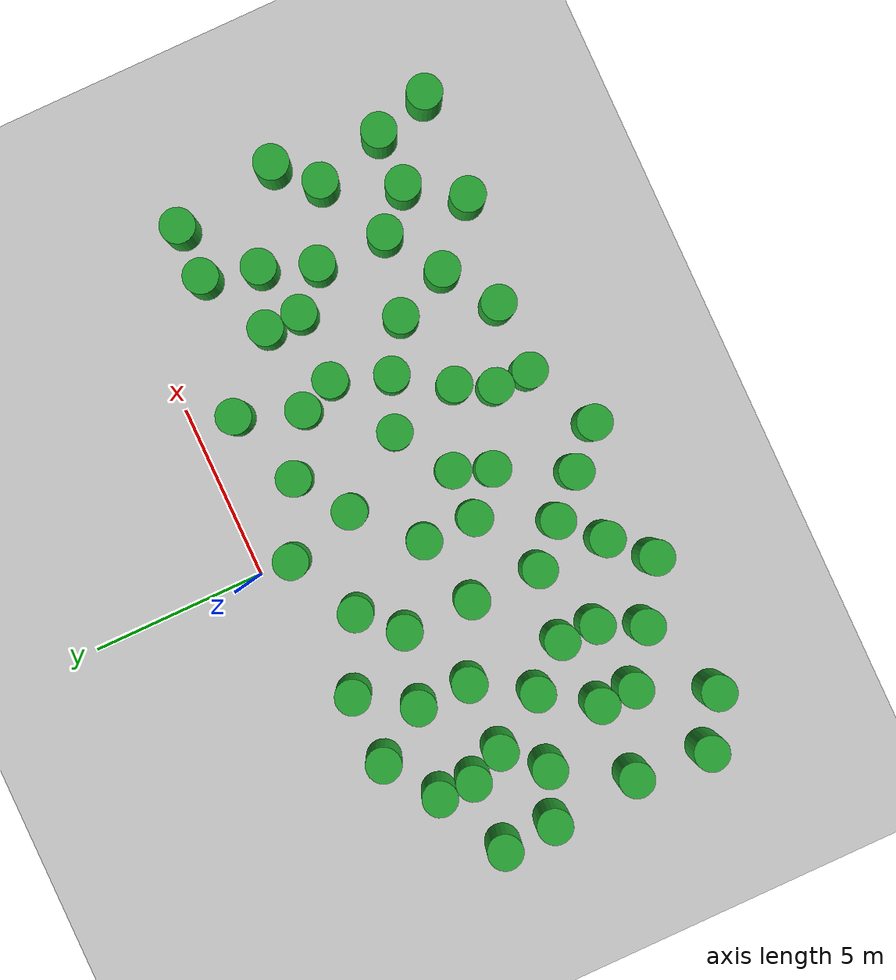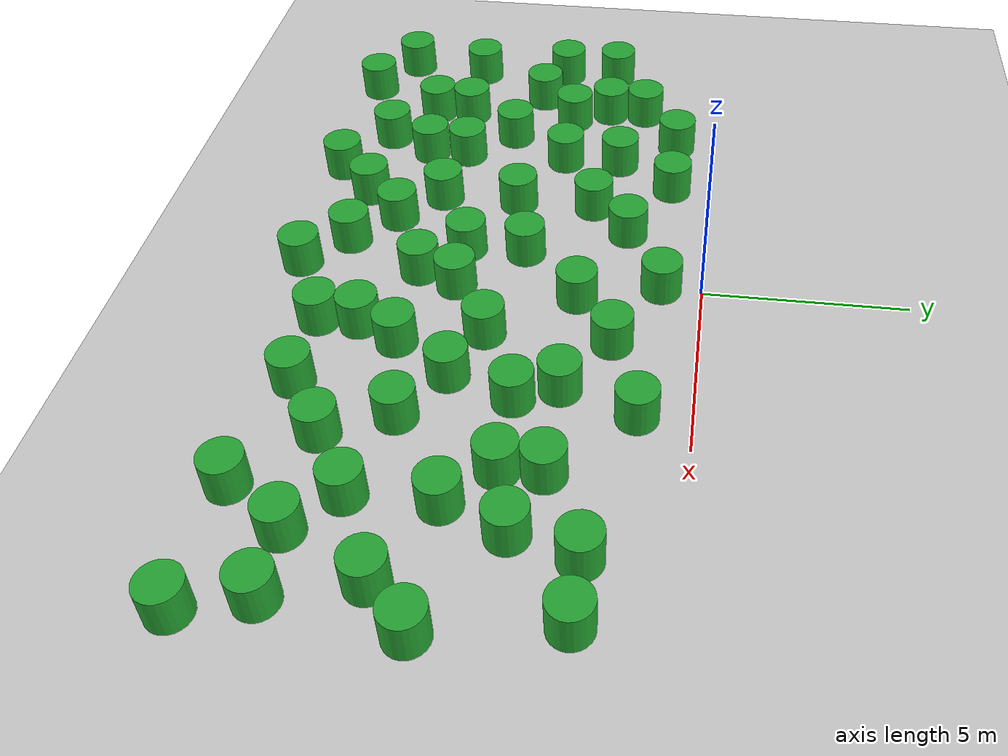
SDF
<sdf version="1.6">
 <world name="default">
  <model name="ground_plane">
   <static>1</static>
   <link name="link">
    <collision name="collision">
     <geometry><plane><normal>0 0 1</normal><size>100 100</size></plane></geometry>
     <surface><friction><ode><mu>100</mu><mu2>50</mu2></ode></friction></surface>
    </collision>
    <visual name="visual">
     <cast_shadows>0</cast_shadows>
     <geometry><plane><normal>0 0 1</normal><size>100 100</size></plane></geometry>
     <material>
      <script><uri>file://media/materials/scripts/gazebo.material</uri><name>Gazebo/Gray</name></script>
     </material>
    </visual>
   </link>
  </model>
  <model name="unit_cylinder">
   <pose>-9.39398 -9.14433 0.499994 -3e-06 -1e-06 -0</pose>
   <link name="link">
    <inertial>
     <mass>1</mass>
     <inertia><ixx>0.145833</ixx><ixy>0</ixy><ixz>0</ixz><iyy>0.145833</iyy><iyz>0</iyz><izz>0.125</izz></inertia>
    </inertial>
    <collision name="collision">
     <geometry><cylinder><radius>0.5</radius><length>1</length></cylinder></geometry>
    </collision>
    <visual name="visual">
     <geometry><cylinder><radius>0.5</radius><length>1</length></cylinder></geometry>
     <material>
      <script><name>Gazebo/Green</name><uri>file://media/materials/scripts/gazebo.material</uri></script>
     </material>
    </visual>
   </link>
  </model>
  <model name="unit_cylinder_clone">
   <pose>-9.20038 -7.01612 0.499994 -3e-06 -2e-06 0</pose>
   <link name="link">
    <inertial>
     <mass>1</mass>
     <inertia><ixx>0.145833</ixx><ixy>0</ixy><ixz>0</ixz><iyy>0.145833</iyy><iyz>0</iyz><izz>0.125</izz></inertia>
    </inertial>
    <collision name="collision">
     <geometry><cylinder><radius>0.5</radius><length>1</length></cylinder></geometry>
    </collision>
    <visual name="visual">
     <geometry><cylinder><radius>0.5</radius><length>1</length></cylinder></geometry>
     <material>
      <script><name>Gazebo/Green</name><uri>file://media/materials/scripts/gazebo.material</uri></script>
     </material>
    </visual>
   </link>
  </model>
  <model name="unit_cylinder_clone_0">
   <pose>-8 -5 0.499994 -3e-06 -2e-06 0</pose>
   <link name="link">
    <inertial>
     <mass>1</mass>
     <inertia><ixx>0.145833</ixx><ixy>0</ixy><ixz>0</ixz><iyy>0.145833</iyy><iyz>0</iyz><izz>0.125</izz></inertia>
    </inertial>
    <collision name="collision">
     <geometry><cylinder><radius>0.5</radius><length>1</length></cylinder></geometry>
    </collision>
    <visual name="visual">
     <geometry><cylinder><radius>0.5</radius><length>1</length></cylinder></geometry>
     <material>
      <script><name>Gazebo/Green</name><uri>file://media/materials/scripts/gazebo.material</uri></script>
     </material>
    </visual>
   </link>
  </model>
  <model name="unit_cylinder_clone_1">
   <pose>-7 -7 0.5 0 0 -2e-06</pose>
   <link name="link">
    <inertial>
     <mass>1</mass>
     <inertia><ixx>0.145833</ixx><ixy>0</ixy><ixz>0</ixz><iyy>0.145833</iyy><iyz>0</iyz><izz>0.125</izz></inertia>
    </inertial>
    <collision name="collision">
     <geometry><cylinder><radius>0.5</radius><length>1</length></cylinder></geometry>
    </collision>
    <visual name="visual">
     <geometry><cylinder><radius>0.5</radius><length>1</length></cylinder></geometry>
     <material>
      <script><name>Gazebo/Green</name><uri>file://media/materials/scripts/gazebo.material</uri></script>
     </material>
    </visual>
   </link>
  </model>
  <model name="unit_cylinder_clone_2">
   <pose>-7 -8 0.5 0 -0 -1e-06</pose>
   <link name="link">
    <inertial>
     <mass>1</mass>
     <inertia><ixx>0.145833</ixx><ixy>0</ixy><ixz>0</ixz><iyy>0.145833</iyy><iyz>0</iyz><izz>0.125</izz></inertia>
    </inertial>
    <collision name="collision">
     <geometry><cylinder><radius>0.5</radius><length>1</length></cylinder></geometry>
    </collision>
    <visual name="visual">
     <geometry><cylinder><radius>0.5</radius><length>1</length></cylinder></geometry>
     <material>
      <script><name>Gazebo/Green</name><uri>file://media/materials/scripts/gazebo.material</uri></script>
     </material>
    </visual>
   </link>
  </model>
  <model name="unit_cylinder_clone_3">
   <pose>-5.00002 -7.78309 0.499998 -3e-06 -1e-06 1.1e-05</pose>
   <link name="link">
    <inertial>
     <mass>1</mass>
     <inertia><ixx>0.145833</ixx><ixy>0</ixy><ixz>0</ixz><iyy>0.145833</iyy><iyz>0</iyz><izz>0.125</izz></inertia>
    </inertial>
    <collision name="collision">
     <geometry><cylinder><radius>0.5</radius><length>1</length></cylinder></geometry>
    </collision>
    <visual name="visual">
     <geometry><cylinder><radius>0.5</radius><length>1</length></cylinder></geometry>
     <material>
      <script><name>Gazebo/Green</name><uri>file://media/materials/scripts/gazebo.material</uri></script>
     </material>
    </visual>
   </link>
  </model>
  <model name="unit_cylinder_clone_4">
   <pose>-3 -5 0.499994 -3e-06 -2e-06 0</pose>
   <link name="link">
    <inertial>
     <mass>1</mass>
     <inertia><ixx>0.145833</ixx><ixy>0</ixy><ixz>0</ixz><iyy>0.145833</iyy><iyz>0</iyz><izz>0.125</izz></inertia>
    </inertial>
    <collision name="collision">
     <geometry><cylinder><radius>0.5</radius><length>1</length></cylinder></geometry>
    </collision>
    <visual name="visual">
     <geometry><cylinder><radius>0.5</radius><length>1</length></cylinder></geometry>
     <material>
      <script><name>Gazebo/Green</name><uri>file://media/materials/scripts/gazebo.material</uri></script>
     </material>
    </visual>
   </link>
  </model>
  <model name="unit_cylinder_clone_5">
   <pose>-5 -4 0.499994 -3e-06 -2e-06 0</pose>
   <link name="link">
    <inertial>
     <mass>1</mass>
     <inertia><ixx>0.145833</ixx><ixy>0</ixy><ixz>0</ixz><iyy>0.145833</iyy><iyz>0</iyz><izz>0.125</izz></inertia>
    </inertial>
    <collision name="collision">
     <geometry><cylinder><radius>0.5</radius><length>1</length></cylinder></geometry>
    </collision>
    <visual name="visual">
     <geometry><cylinder><radius>0.5</radius><length>1</length></cylinder></geometry>
     <material>
      <script><name>Gazebo/Green</name><uri>file://media/materials/scripts/gazebo.material</uri></script>
     </material>
    </visual>
   </link>
  </model>
  <model name="unit_cylinder_clone_6">
   <pose>-4 -1 0.499997 3e-06 2e-06 0</pose>
   <link name="link">
    <inertial>
     <mass>1</mass>
     <inertia><ixx>0.145833</ixx><ixy>0</ixy><ixz>0</ixz><iyy>0.145833</iyy><iyz>0</iyz><izz>0.125</izz></inertia>
    </inertial>
    <collision name="collision">
     <geometry><cylinder><radius>0.5</radius><length>1</length></cylinder></geometry>
    </collision>
    <visual name="visual">
     <geometry><cylinder><radius>0.5</radius><length>1</length></cylinder></geometry>
     <material>
      <script><name>Gazebo/Green</name><uri>file://media/materials/scripts/gazebo.material</uri></script>
     </material>
    </visual>
   </link>
  </model>
  <model name="unit_cylinder_clone_7">
   <pose>-6 -1 0.499997 3e-06 2e-06 0</pose>
   <link name="link">
    <inertial>
     <mass>1</mass>
     <inertia><ixx>0.145833</ixx><ixy>0</ixy><ixz>0</ixz><iyy>0.145833</iyy><iyz>0</iyz><izz>0.125</izz></inertia>
    </inertial>
    <collision name="collision">
     <geometry><cylinder><radius>0.5</radius><length>1</length></cylinder></geometry>
    </collision>
    <visual name="visual">
     <geometry><cylinder><radius>0.5</radius><length>1</length></cylinder></geometry>
     <material>
      <script><name>Gazebo/Green</name><uri>file://media/materials/scripts/gazebo.material</uri></script>
     </material>
    </visual>
   </link>
  </model>
  <model name="unit_cylinder_clone_8">
   <pose>-7.45409 -3 0.499994 -3e-06 -2e-06 0</pose>
   <link name="link">
    <inertial>
     <mass>1</mass>
     <inertia><ixx>0.145833</ixx><ixy>0</ixy><ixz>0</ixz><iyy>0.145833</iyy><iyz>0</iyz><izz>0.125</izz></inertia>
    </inertial>
    <collision name="collision">
     <geometry><cylinder><radius>0.5</radius><length>1</length></cylinder></geometry>
    </collision>
    <visual name="visual">
     <geometry><cylinder><radius>0.5</radius><length>1</length></cylinder></geometry>
     <material>
      <script><name>Gazebo/Green</name><uri>file://media/materials/scripts/gazebo.material</uri></script>
     </material>
    </visual>
   </link>
  </model>
  <model name="unit_cylinder_clone_14">
   <pose>0.566811 -3 0.499997 3e-06 2e-06 0</pose>
   <link name="link">
    <inertial>
     <mass>1</mass>
     <inertia><ixx>0.145833</ixx><ixy>0</ixy><ixz>0</ixz><iyy>0.145833</iyy><iyz>0</iyz><izz>0.125</izz></inertia>
    </inertial>
    <collision name="collision">
     <geometry><cylinder><radius>0.5</radius><length>1</length></cylinder></geometry>
    </collision>
    <visual name="visual">
     <geometry><cylinder><radius>0.5</radius><length>1</length></cylinder></geometry>
     <material>
      <script><name>Gazebo/Green</name><uri>file://media/materials/scripts/gazebo.material</uri></script>
     </material>
    </visual>
   </link>
  </model>
  <model name="unit_cylinder_clone_15">
   <pose>1e-06 -7 0.499997 3e-06 2e-06 0</pose>
   <link name="link">
    <inertial>
     <mass>1</mass>
     <inertia><ixx>0.145833</ixx><ixy>0</ixy><ixz>0</ixz><iyy>0.145833</iyy><iyz>0</iyz><izz>0.125</izz></inertia>
    </inertial>
    <collision name="collision">
     <geometry><cylinder><radius>0.5</radius><length>1</length></cylinder></geometry>
    </collision>
    <visual name="visual">
     <geometry><cylinder><radius>0.5</radius><length>1</length></cylinder></geometry>
     <material>
      <script><name>Gazebo/Green</name><uri>file://media/materials/scripts/gazebo.material</uri></script>
     </material>
    </visual>
   </link>
  </model>
  <model name="unit_cylinder_clone_16">
   <pose>-2 -8 0.499997 3e-06 2e-06 0</pose>
   <link name="link">
    <inertial>
     <mass>1</mass>
     <inertia><ixx>0.145833</ixx><ixy>0</ixy><ixz>0</ixz><iyy>0.145833</iyy><iyz>0</iyz><izz>0.125</izz></inertia>
    </inertial>
    <collision name="collision">
     <geometry><cylinder><radius>0.5</radius><length>1</length></cylinder></geometry>
    </collision>
    <visual name="visual">
     <geometry><cylinder><radius>0.5</radius><length>1</length></cylinder></geometry>
     <material>
      <script><name>Gazebo/Green</name><uri>file://media/materials/scripts/gazebo.material</uri></script>
     </material>
    </visual>
   </link>
  </model>
  <model name="unit_cylinder_clone_17">
   <pose>2 -9.00001 0.499997 -1e-06 0 -3e-06</pose>
   <link name="link">
    <inertial>
     <mass>1</mass>
     <inertia><ixx>0.145833</ixx><ixy>0</ixy><ixz>0</ixz><iyy>0.145833</iyy><iyz>0</iyz><izz>0.125</izz></inertia>
    </inertial>
    <collision name="collision">
     <geometry><cylinder><radius>0.5</radius><length>1</length></cylinder></geometry>
    </collision>
    <visual name="visual">
     <geometry><cylinder><radius>0.5</radius><length>1</length></cylinder></geometry>
     <material>
      <script><name>Gazebo/Green</name><uri>file://media/materials/scripts/gazebo.material</uri></script>
     </material>
    </visual>
   </link>
  </model>
  <model name="unit_cylinder_clone_18">
   <pose>5.4531 -8 0.499994 -3e-06 -2e-06 0</pose>
   <link name="link">
    <inertial>
     <mass>1</mass>
     <inertia><ixx>0.145833</ixx><ixy>0</ixy><ixz>0</ixz><iyy>0.145833</iyy><iyz>0</iyz><izz>0.125</izz></inertia>
    </inertial>
    <collision name="collision">
     <geometry><cylinder><radius>0.5</radius><length>1</length></cylinder></geometry>
    </collision>
    <visual name="visual">
     <geometry><cylinder><radius>0.5</radius><length>1</length></cylinder></geometry>
     <material>
      <script><name>Gazebo/Green</name><uri>file://media/materials/scripts/gazebo.material</uri></script>
     </material>
    </visual>
   </link>
  </model>
  <model name="unit_cylinder_clone_19">
   <pose>7 -7 0.499997 3e-06 2e-06 0</pose>
   <link name="link">
    <inertial>
     <mass>1</mass>
     <inertia><ixx>0.145833</ixx><ixy>0</ixy><ixz>0</ixz><iyy>0.145833</iyy><iyz>0</iyz><izz>0.125</izz></inertia>
    </inertial>
    <collision name="collision">
     <geometry><cylinder><radius>0.5</radius><length>1</length></cylinder></geometry>
    </collision>
    <visual name="visual">
     <geometry><cylinder><radius>0.5</radius><length>1</length></cylinder></geometry>
     <material>
      <script><name>Gazebo/Green</name><uri>file://media/materials/scripts/gazebo.material</uri></script>
     </material>
    </visual>
   </link>
  </model>
  <model name="unit_cylinder_clone_20">
   <pose>6 -4 0.499997 3e-06 1e-06 -0</pose>
   <link name="link">
    <inertial>
     <mass>1</mass>
     <inertia><ixx>0.145833</ixx><ixy>0</ixy><ixz>0</ixz><iyy>0.145833</iyy><iyz>0</iyz><izz>0.125</izz></inertia>
    </inertial>
    <collision name="collision">
     <geometry><cylinder><radius>0.5</radius><length>1</length></cylinder></geometry>
    </collision>
    <visual name="visual">
     <geometry><cylinder><radius>0.5</radius><length>1</length></cylinder></geometry>
     <material>
      <script><name>Gazebo/Green</name><uri>file://media/materials/scripts/gazebo.material</uri></script>
     </material>
    </visual>
   </link>
  </model>
  <model name="unit_cylinder_clone_21">
   <pose>7.58531 -3.52275 0.499997 3e-06 1e-06 -0</pose>
   <link name="link">
    <inertial>
     <mass>1</mass>
     <inertia><ixx>0.145833</ixx><ixy>0</ixy><ixz>0</ixz><iyy>0.145833</iyy><iyz>0</iyz><izz>0.125</izz></inertia>
    </inertial>
    <collision name="collision">
     <geometry><cylinder><radius>0.5</radius><length>1</length></cylinder></geometry>
    </collision>
    <visual name="visual">
     <geometry><cylinder><radius>0.5</radius><length>1</length></cylinder></geometry>
     <material>
      <script><name>Gazebo/Green</name><uri>file://media/materials/scripts/gazebo.material</uri></script>
     </material>
    </visual>
   </link>
  </model>
  <model name="unit_cylinder_clone_41">
   <pose>4.19283 -1.22745 0.499997 4e-06 3e-06 -0</pose>
   <link name="link">
    <inertial>
     <mass>1</mass>
     <inertia><ixx>0.145833</ixx><ixy>0</ixy><ixz>0</ixz><iyy>0.145833</iyy><iyz>0</iyz><izz>0.125</izz></inertia>
    </inertial>
    <collision name="collision">
     <geometry><cylinder><radius>0.5</radius><length>1</length></cylinder></geometry>
    </collision>
    <visual name="visual">
     <geometry><cylinder><radius>0.5</radius><length>1</length></cylinder></geometry>
     <material>
      <script><name>Gazebo/Green</name><uri>file://media/materials/scripts/gazebo.material</uri></script>
     </material>
    </visual>
   </link>
  </model>
  <model name="unit_cylinder_clone_42">
   <pose>3.57059 -3 0.499994 -4e-06 -3e-06 -0</pose>
   <link name="link">
    <inertial>
     <mass>1</mass>
     <inertia><ixx>0.145833</ixx><ixy>0</ixy><ixz>0</ixz><iyy>0.145833</iyy><iyz>0</iyz><izz>0.125</izz></inertia>
    </inertial>
    <collision name="collision">
     <geometry><cylinder><radius>0.5</radius><length>1</length></cylinder></geometry>
    </collision>
    <visual name="visual">
     <geometry><cylinder><radius>0.5</radius><length>1</length></cylinder></geometry>
     <material>
      <script><name>Gazebo/Green</name><uri>file://media/materials/scripts/gazebo.material</uri></script>
     </material>
    </visual>
   </link>
  </model>
  <model name="unit_cylinder_clone_43">
   <pose>3.44881 -5.57403 0.499994 -4e-06 -3e-06 -0</pose>
   <link name="link">
    <inertial>
     <mass>1</mass>
     <inertia><ixx>0.145833</ixx><ixy>0</ixy><ixz>0</ixz><iyy>0.145833</iyy><iyz>0</iyz><izz>0.125</izz></inertia>
    </inertial>
    <collision name="collision">
     <geometry><cylinder><radius>0.5</radius><length>1</length></cylinder></geometry>
    </collision>
    <visual name="visual">
     <geometry><cylinder><radius>0.5</radius><length>1</length></cylinder></geometry>
     <material>
      <script><name>Gazebo/Green</name><uri>file://media/materials/scripts/gazebo.material</uri></script>
     </material>
    </visual>
   </link>
  </model>
  <model name="unit_cylinder_clone_61">
   <pose>-2 -2 0.499996 3e-06 1e-06 -0</pose>
   <link name="link">
    <inertial>
     <mass>1</mass>
     <inertia><ixx>0.145833</ixx><ixy>0</ixy><ixz>0</ixz><iyy>0.145833</iyy><iyz>0</iyz><izz>0.125</izz></inertia>
    </inertial>
    <collision name="collision">
     <geometry><cylinder><radius>0.5</radius><length>1</length></cylinder></geometry>
    </collision>
    <visual name="visual">
     <geometry><cylinder><radius>0.5</radius><length>1</length></cylinder></geometry>
     <material>
      <script><name>Gazebo/Green</name><uri>file://media/materials/scripts/gazebo.material</uri></script>
     </material>
    </visual>
   </link>
  </model>
  <model name="unit_cylinder_clone_62">
   <pose>-1 -6 0.499994 -3e-06 -1e-06 -0</pose>
   <link name="link">
    <inertial>
     <mass>1</mass>
     <inertia><ixx>0.145833</ixx><ixy>0</ixy><ixz>0</ixz><iyy>0.145833</iyy><iyz>0</iyz><izz>0.125</izz></inertia>
    </inertial>
    <collision name="collision">
     <geometry><cylinder><radius>0.5</radius><length>1</length></cylinder></geometry>
    </collision>
    <visual name="visual">
     <geometry><cylinder><radius>0.5</radius><length>1</length></cylinder></geometry>
     <material>
      <script><name>Gazebo/Green</name><uri>file://media/materials/scripts/gazebo.material</uri></script>
     </material>
    </visual>
   </link>
  </model>
  <model name="unit_cylinder_clone_63">
   <pose>0.406638 -6 0.499994 -4e-06 -4e-06 -0</pose>
   <link name="link">
    <inertial>
     <mass>1</mass>
     <inertia><ixx>0.145833</ixx><ixy>0</ixy><ixz>0</ixz><iyy>0.145833</iyy><iyz>0</iyz><izz>0.125</izz></inertia>
    </inertial>
    <collision name="collision">
     <geometry><cylinder><radius>0.5</radius><length>1</length></cylinder></geometry>
    </collision>
    <visual name="visual">
     <geometry><cylinder><radius>0.5</radius><length>1</length></cylinder></geometry>
     <material>
      <script><name>Gazebo/Green</name><uri>file://media/materials/scripts/gazebo.material</uri></script>
     </material>
    </visual>
   </link>
  </model>
  <model name="unit_cylinder_clone_64">
   <pose>2 -5 0.499998 3e-06 -2e-06 0</pose>
   <link name="link">
    <inertial>
     <mass>1</mass>
     <inertia><ixx>0.145833</ixx><ixy>0</ixy><ixz>0</ixz><iyy>0.145833</iyy><iyz>0</iyz><izz>0.125</izz></inertia>
    </inertial>
    <collision name="collision">
     <geometry><cylinder><radius>0.5</radius><length>1</length></cylinder></geometry>
    </collision>
    <visual name="visual">
     <geometry><cylinder><radius>0.5</radius><length>1</length></cylinder></geometry>
     <material>
      <script><name>Gazebo/Green</name><uri>file://media/materials/scripts/gazebo.material</uri></script>
     </material>
    </visual>
   </link>
  </model>
  <model name="unit_cylinder_clone_65">
   <pose>4 -4 0.499992 -3e-06 2e-06 0</pose>
   <link name="link">
    <inertial>
     <mass>1</mass>
     <inertia><ixx>0.145833</ixx><ixy>0</ixy><ixz>0</ixz><iyy>0.145833</iyy><iyz>0</iyz><izz>0.125</izz></inertia>
    </inertial>
    <collision name="collision">
     <geometry><cylinder><radius>0.5</radius><length>1</length></cylinder></geometry>
    </collision>
    <visual name="visual">
     <geometry><cylinder><radius>0.5</radius><length>1</length></cylinder></geometry>
     <material>
      <script><name>Gazebo/Green</name><uri>file://media/materials/scripts/gazebo.material</uri></script>
     </material>
    </visual>
   </link>
  </model>
  <model name="unit_cylinder_clone_66">
   <pose>6 -3 0.5 0 -0 1e-06</pose>
   <link name="link">
    <inertial>
     <mass>1</mass>
     <inertia><ixx>0.145833</ixx><ixy>0</ixy><ixz>0</ixz><iyy>0.145833</iyy><iyz>0</iyz><izz>0.125</izz></inertia>
    </inertial>
    <collision name="collision">
     <geometry><cylinder><radius>0.5</radius><length>1</length></cylinder></geometry>
    </collision>
    <visual name="visual">
     <geometry><cylinder><radius>0.5</radius><length>1</length></cylinder></geometry>
     <material>
      <script><name>Gazebo/Green</name><uri>file://media/materials/scripts/gazebo.material</uri></script>
     </material>
    </visual>
   </link>
  </model>
  <model name="unit_cylinder_clone_67">
   <pose>8 -2 0.499998 3e-06 -2e-06 0</pose>
   <link name="link">
    <inertial>
     <mass>1</mass>
     <inertia><ixx>0.145833</ixx><ixy>0</ixy><ixz>0</ixz><iyy>0.145833</iyy><iyz>0</iyz><izz>0.125</izz></inertia>
    </inertial>
    <collision name="collision">
     <geometry><cylinder><radius>0.5</radius><length>1</length></cylinder></geometry>
    </collision>
    <visual name="visual">
     <geometry><cylinder><radius>0.5</radius><length>1</length></cylinder></geometry>
     <material>
      <script><name>Gazebo/Green</name><uri>file://media/materials/scripts/gazebo.material</uri></script>
     </material>
    </visual>
   </link>
  </model>
  <model name="unit_cylinder_clone_68">
   <pose>9 -6 0.499992 -3e-06 2e-06 0</pose>
   <link name="link">
    <inertial>
     <mass>1</mass>
     <inertia><ixx>0.145833</ixx><ixy>0</ixy><ixz>0</ixz><iyy>0.145833</iyy><iyz>0</iyz><izz>0.125</izz></inertia>
    </inertial>
    <collision name="collision">
     <geometry><cylinder><radius>0.5</radius><length>1</length></cylinder></geometry>
    </collision>
    <visual name="visual">
     <geometry><cylinder><radius>0.5</radius><length>1</length></cylinder></geometry>
     <material>
      <script><name>Gazebo/Green</name><uri>file://media/materials/scripts/gazebo.material</uri></script>
     </material>
    </visual>
   </link>
  </model>
  <model name="unit_cylinder_clone_69">
   <pose>8 -8 0.499996 4e-06 3e-06 -0</pose>
   <link name="link">
    <inertial>
     <mass>1</mass>
     <inertia><ixx>0.145833</ixx><ixy>0</ixy><ixz>0</ixz><iyy>0.145833</iyy><iyz>0</iyz><izz>0.125</izz></inertia>
    </inertial>
    <collision name="collision">
     <geometry><cylinder><radius>0.5</radius><length>1</length></cylinder></geometry>
    </collision>
    <visual name="visual">
     <geometry><cylinder><radius>0.5</radius><length>1</length></cylinder></geometry>
     <material>
      <script><name>Gazebo/Green</name><uri>file://media/materials/scripts/gazebo.material</uri></script>
     </material>
    </visual>
   </link>
  </model>
  <model name="unit_cylinder_clone_70">
   <pose>2 -8 0.499994 -5e-06 -2e-06 0</pose>
   <link name="link">
    <inertial>
     <mass>1</mass>
     <inertia><ixx>0.145833</ixx><ixy>0</ixy><ixz>0</ixz><iyy>0.145833</iyy><iyz>0</iyz><izz>0.125</izz></inertia>
    </inertial>
    <collision name="collision">
     <geometry><cylinder><radius>0.5</radius><length>1</length></cylinder></geometry>
    </collision>
    <visual name="visual">
     <geometry><cylinder><radius>0.5</radius><length>1</length></cylinder></geometry>
     <material>
      <script><name>Gazebo/Green</name><uri>file://media/materials/scripts/gazebo.material</uri></script>
     </material>
    </visual>
   </link>
  </model>
  <model name="unit_cylinder_clone_71">
   <pose>4.77626 -6.45431 0.499996 4e-06 4e-06 -0</pose>
   <link name="link">
    <inertial>
     <mass>1</mass>
     <inertia><ixx>0.145833</ixx><ixy>0</ixy><ixz>0</ixz><iyy>0.145833</iyy><iyz>0</iyz><izz>0.125</izz></inertia>
    </inertial>
    <collision name="collision">
     <geometry><cylinder><radius>0.5</radius><length>1</length></cylinder></geometry>
    </collision>
    <visual name="visual">
     <geometry><cylinder><radius>0.5</radius><length>1</length></cylinder></geometry>
     <material>
      <script><name>Gazebo/Green</name><uri>file://media/materials/scripts/gazebo.material</uri></script>
     </material>
    </visual>
   </link>
  </model>
  <model name="unit_cylinder_clone_72">
   <pose>2.49725 -7 0.499998 3e-06 -2e-06 0</pose>
   <link name="link">
    <inertial>
     <mass>1</mass>
     <inertia><ixx>0.145833</ixx><ixy>0</ixy><ixz>0</ixz><iyy>0.145833</iyy><iyz>0</iyz><izz>0.125</izz></inertia>
    </inertial>
    <collision name="collision">
     <geometry><cylinder><radius>0.5</radius><length>1</length></cylinder></geometry>
    </collision>
    <visual name="visual">
     <geometry><cylinder><radius>0.5</radius><length>1</length></cylinder></geometry>
     <material>
      <script><name>Gazebo/Green</name><uri>file://media/materials/scripts/gazebo.material</uri></script>
     </material>
    </visual>
   </link>
  </model>
  <model name="unit_cylinder_clone_73">
   <pose>-0.999999 -4.49894 0.499992 -3e-06 2e-06 0</pose>
   <link name="link">
    <inertial>
     <mass>1</mass>
     <inertia><ixx>0.145833</ixx><ixy>0</ixy><ixz>0</ixz><iyy>0.145833</iyy><iyz>0</iyz><izz>0.125</izz></inertia>
    </inertial>
    <collision name="collision">
     <geometry><cylinder><radius>0.5</radius><length>1</length></cylinder></geometry>
    </collision>
    <visual name="visual">
     <geometry><cylinder><radius>0.5</radius><length>1</length></cylinder></geometry>
     <material>
      <script><name>Gazebo/Green</name><uri>file://media/materials/scripts/gazebo.material</uri></script>
     </material>
    </visual>
   </link>
  </model>
  <model name="unit_cylinder_clone_74">
   <pose>-5.00001 -6.74045 0.499997 3e-06 2e-06 9.7e-05</pose>
   <link name="link">
    <inertial>
     <mass>1</mass>
     <inertia><ixx>0.145833</ixx><ixy>0</ixy><ixz>0</ixz><iyy>0.145833</iyy><iyz>0</iyz><izz>0.125</izz></inertia>
    </inertial>
    <collision name="collision">
     <geometry><cylinder><radius>0.5</radius><length>1</length></cylinder></geometry>
    </collision>
    <visual name="visual">
     <geometry><cylinder><radius>0.5</radius><length>1</length></cylinder></geometry>
     <material>
      <script><name>Gazebo/Green</name><uri>file://media/materials/scripts/gazebo.material</uri></script>
     </material>
    </visual>
   </link>
  </model>
  <model name="unit_cylinder_clone_75">
   <pose>-3 -9 0.499993 -3e-06 2e-06 0</pose>
   <link name="link">
    <inertial>
     <mass>1</mass>
     <inertia><ixx>0.145833</ixx><ixy>0</ixy><ixz>0</ixz><iyy>0.145833</iyy><iyz>0</iyz><izz>0.125</izz></inertia>
    </inertial>
    <collision name="collision">
     <geometry><cylinder><radius>0.5</radius><length>1</length></cylinder></geometry>
    </collision>
    <visual name="visual">
     <geometry><cylinder><radius>0.5</radius><length>1</length></cylinder></geometry>
     <material>
      <script><name>Gazebo/Green</name><uri>file://media/materials/scripts/gazebo.material</uri></script>
     </material>
    </visual>
   </link>
  </model>
  <model name="unit_cylinder_clone_76">
   <pose>-3 -7 0.499993 -3e-06 2e-06 0</pose>
   <link name="link">
    <inertial>
     <mass>1</mass>
     <inertia><ixx>0.145833</ixx><ixy>0</ixy><ixz>0</ixz><iyy>0.145833</iyy><iyz>0</iyz><izz>0.125</izz></inertia>
    </inertial>
    <collision name="collision">
     <geometry><cylinder><radius>0.5</radius><length>1</length></cylinder></geometry>
    </collision>
    <visual name="visual">
     <geometry><cylinder><radius>0.5</radius><length>1</length></cylinder></geometry>
     <material>
      <script><name>Gazebo/Green</name><uri>file://media/materials/scripts/gazebo.material</uri></script>
     </material>
    </visual>
   </link>
  </model>
  <model name="unit_cylinder_clone_77">
   <pose>-6 -5.56318 0.499998 3e-06 -2e-06 0</pose>
   <link name="link">
    <inertial>
     <mass>1</mass>
     <inertia><ixx>0.145833</ixx><ixy>0</ixy><ixz>0</ixz><iyy>0.145833</iyy><iyz>0</iyz><izz>0.125</izz></inertia>
    </inertial>
    <collision name="collision">
     <geometry><cylinder><radius>0.5</radius><length>1</length></cylinder></geometry>
    </collision>
    <visual name="visual">
     <geometry><cylinder><radius>0.5</radius><length>1</length></cylinder></geometry>
     <material>
      <script><name>Gazebo/Green</name><uri>file://media/materials/scripts/gazebo.material</uri></script>
     </material>
    </visual>
   </link>
  </model>
  <model name="unit_cylinder_clone_78">
   <pose>-3 -3 0.499994 -4e-06 -1e-06 0</pose>
   <link name="link">
    <inertial>
     <mass>1</mass>
     <inertia><ixx>0.145833</ixx><ixy>0</ixy><ixz>0</ixz><iyy>0.145833</iyy><iyz>0</iyz><izz>0.125</izz></inertia>
    </inertial>
    <collision name="collision">
     <geometry><cylinder><radius>0.5</radius><length>1</length></cylinder></geometry>
    </collision>
    <visual name="visual">
     <geometry><cylinder><radius>0.5</radius><length>1</length></cylinder></geometry>
     <material>
      <script><name>Gazebo/Green</name><uri>file://media/materials/scripts/gazebo.material</uri></script>
     </material>
    </visual>
   </link>
  </model>
  <model name="unit_cylinder_clone_79">
   <pose>-5 -2.49544 0.499993 -4e-06 -1e-06 0</pose>
   <link name="link">
    <inertial>
     <mass>1</mass>
     <inertia><ixx>0.145833</ixx><ixy>0</ixy><ixz>0</ixz><iyy>0.145833</iyy><iyz>0</iyz><izz>0.125</izz></inertia>
    </inertial>
    <collision name="collision">
     <geometry><cylinder><radius>0.5</radius><length>1</length></cylinder></geometry>
    </collision>
    <visual name="visual">
     <geometry><cylinder><radius>0.5</radius><length>1</length></cylinder></geometry>
     <material>
      <script><name>Gazebo/Green</name><uri>file://media/materials/scripts/gazebo.material</uri></script>
     </material>
    </visual>
   </link>
  </model>
  <model name="unit_cylinder_clone_80">
   <pose>-1e-06 -1 0.499998 3e-06 -2e-06 0</pose>
   <link name="link">
    <inertial>
     <mass>1</mass>
     <inertia><ixx>0.145833</ixx><ixy>0</ixy><ixz>0</ixz><iyy>0.145833</iyy><iyz>0</iyz><izz>0.125</izz></inertia>
    </inertial>
    <collision name="collision">
     <geometry><cylinder><radius>0.5</radius><length>1</length></cylinder></geometry>
    </collision>
    <visual name="visual">
     <geometry><cylinder><radius>0.5</radius><length>1</length></cylinder></geometry>
     <material>
      <script><name>Gazebo/Green</name><uri>file://media/materials/scripts/gazebo.material</uri></script>
     </material>
    </visual>
   </link>
  </model>
  <model name="unit_cylinder_clone_81">
   <pose>2 -2 0.499997 4e-06 1e-06 0</pose>
   <link name="link">
    <inertial>
     <mass>1</mass>
     <inertia><ixx>0.145833</ixx><ixy>0</ixy><ixz>0</ixz><iyy>0.145833</iyy><iyz>0</iyz><izz>0.125</izz></inertia>
    </inertial>
    <collision name="collision">
     <geometry><cylinder><radius>0.5</radius><length>1</length></cylinder></geometry>
    </collision>
    <visual name="visual">
     <geometry><cylinder><radius>0.5</radius><length>1</length></cylinder></geometry>
     <material>
      <script><name>Gazebo/Green</name><uri>file://media/materials/scripts/gazebo.material</uri></script>
     </material>
    </visual>
   </link>
  </model>
  <model name="unit_cylinder_clone_86">
   <pose>9.49417 -2 0.499998 3e-06 -3e-06 0</pose>
   <link name="link">
    <inertial>
     <mass>1</mass>
     <inertia><ixx>0.145833</ixx><ixy>0</ixy><ixz>0</ixz><iyy>0.145833</iyy><iyz>0</iyz><izz>0.125</izz></inertia>
    </inertial>
    <collision name="collision">
     <geometry><cylinder><radius>0.5</radius><length>1</length></cylinder></geometry>
    </collision>
    <visual name="visual">
     <geometry><cylinder><radius>0.5</radius><length>1</length></cylinder></geometry>
     <material>
      <script><name>Gazebo/Green</name><uri>file://media/materials/scripts/gazebo.material</uri></script>
     </material>
    </visual>
   </link>
  </model>
  <model name="unit_cylinder_clone_87">
   <pose>10 -5 0.499998 3e-06 -3e-06 0</pose>
   <link name="link">
    <inertial>
     <mass>1</mass>
     <inertia><ixx>0.145833</ixx><ixy>0</ixy><ixz>0</ixz><iyy>0.145833</iyy><iyz>0</iyz><izz>0.125</izz></inertia>
    </inertial>
    <collision name="collision">
     <geometry><cylinder><radius>0.5</radius><length>1</length></cylinder></geometry>
    </collision>
    <visual name="visual">
     <geometry><cylinder><radius>0.5</radius><length>1</length></cylinder></geometry>
     <material>
      <script><name>Gazebo/Green</name><uri>file://media/materials/scripts/gazebo.material</uri></script>
     </material>
    </visual>
   </link>
  </model>
  <model name="unit_cylinder_clone_88">
   <pose>7 -5 0.499993 -3e-06 3e-06 0</pose>
   <link name="link">
    <inertial>
     <mass>1</mass>
     <inertia><ixx>0.145833</ixx><ixy>0</ixy><ixz>0</ixz><iyy>0.145833</iyy><iyz>0</iyz><izz>0.125</izz></inertia>
    </inertial>
    <collision name="collision">
     <geometry><cylinder><radius>0.5</radius><length>1</length></cylinder></geometry>
    </collision>
    <visual name="visual">
     <geometry><cylinder><radius>0.5</radius><length>1</length></cylinder></geometry>
     <material>
      <script><name>Gazebo/Green</name><uri>file://media/materials/scripts/gazebo.material</uri></script>
     </material>
    </visual>
   </link>
  </model>
  <model name="unit_cylinder_clone_89">
   <pose>4 -9 0.499997 4e-06 2e-06 -0</pose>
   <link name="link">
    <inertial>
     <mass>1</mass>
     <inertia><ixx>0.145833</ixx><ixy>0</ixy><ixz>0</ixz><iyy>0.145833</iyy><iyz>0</iyz><izz>0.125</izz></inertia>
    </inertial>
    <collision name="collision">
     <geometry><cylinder><radius>0.5</radius><length>1</length></cylinder></geometry>
    </collision>
    <visual name="visual">
     <geometry><cylinder><radius>0.5</radius><length>1</length></cylinder></geometry>
     <material>
      <script><name>Gazebo/Green</name><uri>file://media/materials/scripts/gazebo.material</uri></script>
     </material>
    </visual>
   </link>
  </model>
  <model name="unit_cylinder_clone_90">
   <pose>-0.999999 -9 0.499992 -3e-06 3e-06 0</pose>
   <link name="link">
    <inertial>
     <mass>1</mass>
     <inertia><ixx>0.145833</ixx><ixy>0</ixy><ixz>0</ixz><iyy>0.145833</iyy><iyz>0</iyz><izz>0.125</izz></inertia>
    </inertial>
    <collision name="collision">
     <geometry><cylinder><radius>0.5</radius><length>1</length></cylinder></geometry>
    </collision>
    <visual name="visual">
     <geometry><cylinder><radius>0.5</radius><length>1</length></cylinder></geometry>
     <material>
      <script><name>Gazebo/Green</name><uri>file://media/materials/scripts/gazebo.material</uri></script>
     </material>
    </visual>
   </link>
  </model>
  <model name="unit_cylinder_clone_102">
   <pose>-9.48421 -3 0.499992 -3e-06 4e-06 0</pose>
   <link name="link">
    <inertial>
     <mass>1</mass>
     <inertia><ixx>0.145833</ixx><ixy>0</ixy><ixz>0</ixz><iyy>0.145833</iyy><iyz>0</iyz><izz>0.125</izz></inertia>
    </inertial>
    <collision name="collision">
     <geometry><cylinder><radius>0.5</radius><length>1</length></cylinder></geometry>
    </collision>
    <visual name="visual">
     <geometry><cylinder><radius>0.5</radius><length>1</length></cylinder></geometry>
     <material>
      <script><name>Gazebo/Green</name><uri>file://media/materials/scripts/gazebo.material</uri></script>
     </material>
    </visual>
   </link>
  </model>
  <model name="unit_cylinder_clone_103">
   <pose>-9.41675 -4.4994 0.499992 -3e-06 4e-06 0</pose>
   <link name="link">
    <inertial>
     <mass>1</mass>
     <inertia><ixx>0.145833</ixx><ixy>0</ixy><ixz>0</ixz><iyy>0.145833</iyy><iyz>0</iyz><izz>0.125</izz></inertia>
    </inertial>
    <collision name="collision">
     <geometry><cylinder><radius>0.5</radius><length>1</length></cylinder></geometry>
    </collision>
    <visual name="visual">
     <geometry><cylinder><radius>0.5</radius><length>1</length></cylinder></geometry>
     <material>
      <script><name>Gazebo/Green</name><uri>file://media/materials/scripts/gazebo.material</uri></script>
     </material>
    </visual>
   </link>
  </model>
  <model name="unit_cylinder_clone_104">
   <pose>-5.59005 -9 0.499992 -3e-06 4e-06 0</pose>
   <link name="link">
    <inertial>
     <mass>1</mass>
     <inertia><ixx>0.145833</ixx><ixy>0</ixy><ixz>0</ixz><iyy>0.145833</iyy><iyz>0</iyz><izz>0.125</izz></inertia>
    </inertial>
    <collision name="collision">
     <geometry><cylinder><radius>0.5</radius><length>1</length></cylinder></geometry>
    </collision>
    <visual name="visual">
     <geometry><cylinder><radius>0.5</radius><length>1</length></cylinder></geometry>
     <material>
      <script><name>Gazebo/Green</name><uri>file://media/materials/scripts/gazebo.material</uri></script>
     </material>
    </visual>
   </link>
  </model>
  <model name="unit_cylinder_clone_105">
   <pose>-8 -10 0.499998 3e-06 -4e-06 0</pose>
   <link name="link">
    <inertial>
     <mass>1</mass>
     <inertia><ixx>0.145833</ixx><ixy>0</ixy><ixz>0</ixz><iyy>0.145833</iyy><iyz>0</iyz><izz>0.125</izz></inertia>
    </inertial>
    <collision name="collision">
     <geometry><cylinder><radius>0.5</radius><length>1</length></cylinder></geometry>
    </collision>
    <visual name="visual">
     <geometry><cylinder><radius>0.5</radius><length>1</length></cylinder></geometry>
     <material>
      <script><name>Gazebo/Green</name><uri>file://media/materials/scripts/gazebo.material</uri></script>
     </material>
    </visual>
   </link>
  </model>
  <model name="unit_cylinder_clone_106">
   <pose>10 -9.55018 0.499992 -3e-06 4e-06 0</pose>
   <link name="link">
    <inertial>
     <mass>1</mass>
     <inertia><ixx>0.145833</ixx><ixy>0</ixy><ixz>0</ixz><iyy>0.145833</iyy><iyz>0</iyz><izz>0.125</izz></inertia>
    </inertial>
    <collision name="collision">
     <geometry><cylinder><radius>0.5</radius><length>1</length></cylinder></geometry>
    </collision>
    <visual name="visual">
     <geometry><cylinder><radius>0.5</radius><length>1</length></cylinder></geometry>
     <material>
      <script><name>Gazebo/Green</name><uri>file://media/materials/scripts/gazebo.material</uri></script>
     </material>
    </visual>
   </link>
  </model>
  <model name="unit_cylinder_clone_107">
   <pose>9.56897 -8 0.499993 -3e-06 -2e-06 0</pose>
   <link name="link">
    <inertial>
     <mass>1</mass>
     <inertia><ixx>0.145833</ixx><ixy>0</ixy><ixz>0</ixz><iyy>0.145833</iyy><iyz>0</iyz><izz>0.125</izz></inertia>
    </inertial>
    <collision name="collision">
     <geometry><cylinder><radius>0.5</radius><length>1</length></cylinder></geometry>
    </collision>
    <visual name="visual">
     <geometry><cylinder><radius>0.5</radius><length>1</length></cylinder></geometry>
     <material>
      <script><name>Gazebo/Green</name><uri>file://media/materials/scripts/gazebo.material</uri></script>
     </material>
    </visual>
   </link>
  </model>
  <model name="unit_cylinder_clone_108">
   <pose>7 -9.46445 0.499993 -3e-06 -2e-06 0</pose>
   <link name="link">
    <inertial>
     <mass>1</mass>
     <inertia><ixx>0.145833</ixx><ixy>0</ixy><ixz>0</ixz><iyy>0.145833</iyy><iyz>0</iyz><izz>0.125</izz></inertia>
    </inertial>
    <collision name="collision">
     <geometry><cylinder><radius>0.5</radius><length>1</length></cylinder></geometry>
    </collision>
    <visual name="visual">
     <geometry><cylinder><radius>0.5</radius><length>1</length></cylinder></geometry>
     <material>
      <script><name>Gazebo/Green</name><uri>file://media/materials/scripts/gazebo.material</uri></script>
     </material>
    </visual>
   </link>
  </model>
  <model name="unit_cylinder_clone_109">
   <pose>2e-06 -10 0.499998 4e-06 4e-06 -0</pose>
   <link name="link">
    <inertial>
     <mass>1</mass>
     <inertia><ixx>0.145833</ixx><ixy>0</ixy><ixz>0</ixz><iyy>0.145833</iyy><iyz>0</iyz><izz>0.125</izz></inertia>
    </inertial>
    <collision name="collision">
     <geometry><cylinder><radius>0.5</radius><length>1</length></cylinder></geometry>
    </collision>
    <visual name="visual">
     <geometry><cylinder><radius>0.5</radius><length>1</length></cylinder></geometry>
     <material>
      <script><name>Gazebo/Green</name><uri>file://media/materials/scripts/gazebo.material</uri></script>
     </material>
    </visual>
   </link>
  </model>
  <model name="unit_cylinder_clone_110">
   <pose>-4 -10 0.499993 -3e-06 -3e-06 0</pose>
   <link name="link">
    <inertial>
     <mass>1</mass>
     <inertia><ixx>0.145833</ixx><ixy>0</ixy><ixz>0</ixz><iyy>0.145833</iyy><iyz>0</iyz><izz>0.125</izz></inertia>
    </inertial>
    <collision name="collision">
     <geometry><cylinder><radius>0.5</radius><length>1</length></cylinder></geometry>
    </collision>
    <visual name="visual">
     <geometry><cylinder><radius>0.5</radius><length>1</length></cylinder></geometry>
     <material>
      <script><name>Gazebo/Green</name><uri>file://media/materials/scripts/gazebo.material</uri></script>
     </material>
    </visual>
   </link>
  </model>
  <model name="unit_cylinder_clone_114">
   <pose>-7.45672 -2 0.498373 0 -0 0</pose>
   <link name="link">
    <inertial>
     <mass>1</mass>
     <inertia><ixx>0.145833</ixx><ixy>0</ixy><ixz>0</ixz><iyy>0.145833</iyy><iyz>0</iyz><izz>0.125</izz></inertia>
    </inertial>
    <collision name="collision">
     <geometry><cylinder><radius>0.5</radius><length>1</length></cylinder></geometry>
    </collision>
    <visual name="visual">
     <geometry><cylinder><radius>0.5</radius><length>1</length></cylinder></geometry>
     <material>
      <script><name>Gazebo/Green</name><uri>file://media/materials/scripts/gazebo.material</uri></script>
     </material>
    </visual>
   </link>
  </model>
  <model name="unit_cylinder_clone_115">
   <pose>-7 -4 0.499993 -3e-06 -4e-06 -0</pose>
   <link name="link">
    <inertial>
     <mass>1</mass>
     <inertia><ixx>0.145833</ixx><ixy>0</ixy><ixz>0</ixz><iyy>0.145833</iyy><iyz>0</iyz><izz>0.125</izz></inertia>
    </inertial>
    <collision name="collision">
     <geometry><cylinder><radius>0.5</radius><length>1</length></cylinder></geometry>
    </collision>
    <visual name="visual">
     <geometry><cylinder><radius>0.5</radius><length>1</length></cylinder></geometry>
     <material>
      <script><name>Gazebo/Green</name><uri>file://media/materials/scripts/gazebo.material</uri></script>
     </material>
    </visual>
   </link>
  </model>
 </world>
</sdf>
